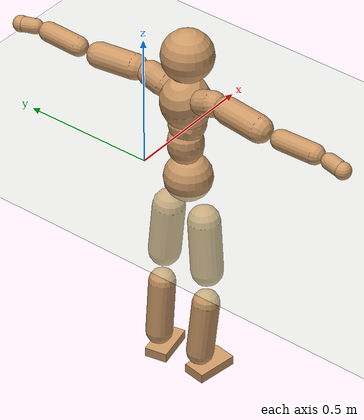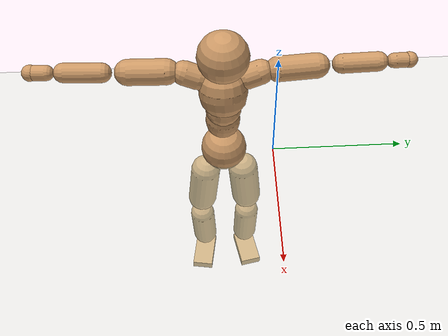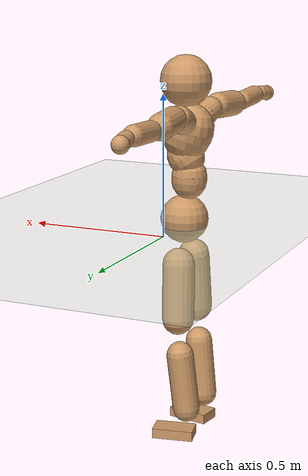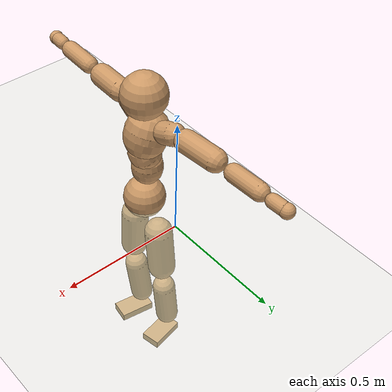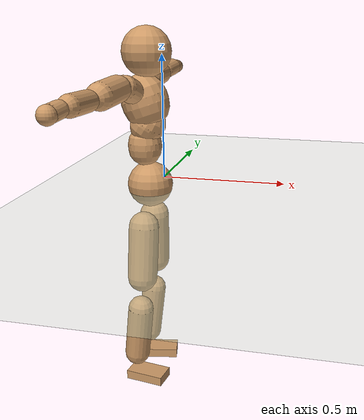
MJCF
<mujoco model="humanoid">
  <compiler coordinate="local"/>
  <default>
    <joint damping="0.0" armature="0.01" stiffness="0.0" limited="true"/>
    <geom conaffinity="1" condim="3" contype="7" margin="0.001" rgba="0.8 0.6 .4 1"/>
  </default>
  <asset>
    <texture type="skybox" builtin="gradient" rgb1=".4 .5 .6" rgb2="0 0 0" width="100" height="100"/>
    <texture builtin="flat" height="1278" mark="cross" markrgb="1 1 1" name="texgeom" random="0.01" rgb1="0.8 0.6 0.4" rgb2="0.8 0.6 0.4" type="cube" width="127"/>
    <texture builtin="checker" height="100" name="texplane" rgb1="0 0 0" rgb2="0.8 0.8 0.8" type="2d" width="100"/>
    <material name="MatPlane" reflectance="0.5" shininess="1" specular="1" texrepeat="60 60" texture="texplane"/>
    <material name="geom" texture="texgeom" texuniform="true"/>
  </asset>
  <worldbody>
    <light cutoff="100" diffuse="1 1 1" dir="-0 0 -1.3" directional="true" exponent="1" pos="0 0 1.3" specular=".1 .1 .1"/>
    <geom conaffinity="1" condim="3" name="floor" pos="0 0 0" rgba="0.8 0.9 0.8 1" size="100 100 .2" type="plane" material="MatPlane"/>
    <body name="Pelvis" pos="0.0003 -0.1916 0.0254">
      <freejoint name="Pelvis"/>
      <geom type="sphere" contype="1" conaffinity="1" density="500" size="0.0873" pos="0.0000 0.0000 0.0000" name="Pelvis"/>
      <body name="L_Hip" pos="-0.0088 0.0705 -0.084">
        <joint name="L_Hip_x" type="hinge" pos="0 0 0" axis="1 0 0" stiffness="800" damping="80" armature="0.02" range="-180.0000 180.0000"/>
        <joint name="L_Hip_y" type="hinge" pos="0 0 0" axis="0 1 0" stiffness="800" damping="80" armature="0.02" range="-180.0000 180.0000"/>
        <joint name="L_Hip_z" type="hinge" pos="0 0 0" axis="0 0 1" stiffness="800" damping="80" armature="0.02" range="-180.0000 180.0000"/>
        <geom type="capsule" contype="1" conaffinity="1" density="500" fromto="-0.0018 0.0051 -0.0673 -0.0071 0.0205 -0.2692" size="0.0583" name="L_Hip"/>
        <body name="L_Knee" pos="-0.0089 0.0257 -0.3366">
          <joint name="L_Knee_x" type="hinge" pos="0 0 0" axis="1 0 0" stiffness="800" damping="80" armature="0.02" range="-180.0000 180.0000"/>
          <joint name="L_Knee_y" type="hinge" pos="0 0 0" axis="0 1 0" stiffness="800" damping="80" armature="0.02" range="-180.0000 180.0000"/>
          <joint name="L_Knee_z" type="hinge" pos="0 0 0" axis="0 0 1" stiffness="800" damping="80" armature="0.02" range="-180.0000 180.0000"/>
          <geom type="capsule" contype="1" conaffinity="1" density="500" fromto="-0.0081 -0.0018 -0.0694 -0.0324 -0.0071 -0.2775" size="0.0492" name="L_Knee"/>
          <body name="L_Ankle" pos="-0.0405 -0.0089 -0.3469">
            <joint name="L_Ankle_x" type="hinge" pos="0 0 0" axis="1 0 0" stiffness="800" damping="80" armature="0.02" range="-180.0000 180.0000"/>
            <joint name="L_Ankle_y" type="hinge" pos="0 0 0" axis="0 1 0" stiffness="800" damping="80" armature="0.02" range="-180.0000 180.0000"/>
            <joint name="L_Ankle_z" type="hinge" pos="0 0 0" axis="0 0 1" stiffness="800" damping="80" armature="0.02" range="-180.0000 180.0000"/>
            <geom type="box" contype="1" conaffinity="1" density="500" pos="0.0523 0.0105 -0.0253" size="0.0752 0.0422 0.0183" quat="0.9951 0.0000 0.0000 0.0990" name="L_Ankle"/>
            <body name="L_Toe" pos="0.1046 0.021 -0.0505">
              <joint name="L_Toe_x" type="hinge" pos="0 0 0" axis="1 0 0" stiffness="500" damping="50" armature="0.02" range="-180.0000 180.0000"/>
              <joint name="L_Toe_y" type="hinge" pos="0 0 0" axis="0 1 0" stiffness="500" damping="50" armature="0.02" range="-180.0000 180.0000"/>
              <joint name="L_Toe_z" type="hinge" pos="0 0 0" axis="0 0 1" stiffness="500" damping="50" armature="0.02" range="-180.0000 180.0000"/>
              <geom type="box" contype="1" conaffinity="1" density="500" pos="0.0000 0.0000 0.0250" size="0.0009 0.0021 0.0009" quat="0.9944 0.0000 0.0000 0.1061" name="L_Toe"/>
            </body>
          </body>
        </body>
      </body>
      <body name="R_Hip" pos="-0.0053 -0.0678 -0.0839">
        <joint name="R_Hip_x" type="hinge" pos="0 0 0" axis="1 0 0" stiffness="800" damping="80" armature="0.02" range="-180.0000 180.0000"/>
        <joint name="R_Hip_y" type="hinge" pos="0 0 0" axis="0 1 0" stiffness="800" damping="80" armature="0.02" range="-180.0000 180.0000"/>
        <joint name="R_Hip_z" type="hinge" pos="0 0 0" axis="0 0 1" stiffness="800" damping="80" armature="0.02" range="-180.0000 180.0000"/>
        <geom type="capsule" contype="1" conaffinity="1" density="500" fromto="-0.0019 -0.0064 -0.0681 -0.0075 -0.0255 -0.2723" size="0.0578" name="R_Hip"/>
        <body name="R_Knee" pos="-0.0094 -0.0318 -0.3403">
          <joint name="R_Knee_x" type="hinge" pos="0 0 0" axis="1 0 0" stiffness="800" damping="80" armature="0.02" range="-180.0000 180.0000"/>
          <joint name="R_Knee_y" type="hinge" pos="0 0 0" axis="0 1 0" stiffness="800" damping="80" armature="0.02" range="-180.0000 180.0000"/>
          <joint name="R_Knee_z" type="hinge" pos="0 0 0" axis="0 0 1" stiffness="800" damping="80" armature="0.02" range="-180.0000 180.0000"/>
          <geom type="capsule" contype="1" conaffinity="1" density="500" fromto="-0.0077 0.0023 -0.0694 -0.0310 0.0092 -0.2775" size="0.0498" name="R_Knee"/>
          <body name="R_Ankle" pos="-0.0387 0.0115 -0.3469">
            <joint name="R_Ankle_x" type="hinge" pos="0 0 0" axis="1 0 0" stiffness="800" damping="80" armature="0.02" range="-180.0000 180.0000"/>
            <joint name="R_Ankle_y" type="hinge" pos="0 0 0" axis="0 1 0" stiffness="800" damping="80" armature="0.02" range="-180.0000 180.0000"/>
            <joint name="R_Ankle_z" type="hinge" pos="0 0 0" axis="0 0 1" stiffness="800" damping="80" armature="0.02" range="-180.0000 180.0000"/>
            <geom type="box" contype="1" conaffinity="1" density="500" pos="0.0539 -0.0085 -0.0214" size="0.0765 0.0425 0.0181" quat="0.9969 0.0000 0.0000 -0.0781" name="R_Ankle"/>
            <body name="R_Toe" pos="0.1078 -0.017 -0.0428">
              <joint name="R_Toe_x" type="hinge" pos="0 0 0" axis="1 0 0" stiffness="500" damping="50" armature="0.02" range="-180.0000 180.0000"/>
              <joint name="R_Toe_y" type="hinge" pos="0 0 0" axis="0 1 0" stiffness="500" damping="50" armature="0.02" range="-180.0000 180.0000"/>
              <joint name="R_Toe_z" type="hinge" pos="0 0 0" axis="0 0 1" stiffness="500" damping="50" armature="0.02" range="-180.0000 180.0000"/>
              <geom type="box" contype="1" conaffinity="1" density="500" pos="0.0000 0.0000 0.0241" size="0.0008 0.0021 0.001" quat="0.9977 0.0000 0.0000 -0.0678" name="R_Toe"/>
            </body>
          </body>
        </body>
      </body>
      <body name="Torso" pos="-0.0159 -0.0022 0.0933">
        <joint name="Torso_x" type="hinge" pos="0 0 0" axis="1 0 0" stiffness="1000" damping="100" armature="0.02" range="-180.0000 180.0000"/>
        <joint name="Torso_y" type="hinge" pos="0 0 0" axis="0 1 0" stiffness="1000" damping="100" armature="0.02" range="-180.0000 180.0000"/>
        <joint name="Torso_z" type="hinge" pos="0 0 0" axis="0 0 1" stiffness="1000" damping="100" armature="0.02" range="-180.0000 180.0000"/>
        <geom type="capsule" contype="1" conaffinity="1" density="500" fromto="-0.0012 0.0010 0.0680 -0.0008 0.0006 0.0453" size="0.0638" name="Torso"/>
        <body name="Spine" pos="-0.0021 0.0016 0.1133">
          <joint name="Spine_x" type="hinge" pos="0 0 0" axis="1 0 0" stiffness="1000" damping="100" armature="0.02" range="-180.0000 180.0000"/>
          <joint name="Spine_y" type="hinge" pos="0 0 0" axis="0 1 0" stiffness="1000" damping="100" armature="0.02" range="-180.0000 180.0000"/>
          <joint name="Spine_z" type="hinge" pos="0 0 0" axis="0 0 1" stiffness="1000" damping="100" armature="0.02" range="-180.0000 180.0000"/>
          <geom type="capsule" contype="1" conaffinity="1" density="500" fromto="0.0169 0.0014 0.0259 0.0113 0.0010 0.0173" size="0.0658" name="Spine"/>
          <body name="Chest" pos="0.0282 0.0024 0.0432">
            <joint name="Chest_x" type="hinge" pos="0 0 0" axis="1 0 0" stiffness="1000" damping="100" armature="0.02" range="-180.0000 180.0000"/>
            <joint name="Chest_y" type="hinge" pos="0 0 0" axis="0 1 0" stiffness="1000" damping="100" armature="0.02" range="-180.0000 180.0000"/>
            <joint name="Chest_z" type="hinge" pos="0 0 0" axis="0 0 1" stiffness="1000" damping="100" armature="0.02" range="-180.0000 180.0000"/>
            <geom type="capsule" contype="1" conaffinity="1" density="500" fromto="-0.0279 -0.0004 0.0826 -0.0186 -0.0003 0.0551" size="0.0887" name="Chest"/>
            <body name="Neck" pos="-0.0579 -0.001 0.1936">
              <joint name="Neck_x" type="hinge" pos="0 0 0" axis="1 0 0" stiffness="500" damping="50" armature="0.02" range="-180.0000 180.0000"/>
              <joint name="Neck_y" type="hinge" pos="0 0 0" axis="0 1 0" stiffness="500" damping="50" armature="0.02" range="-180.0000 180.0000"/>
              <joint name="Neck_z" type="hinge" pos="0 0 0" axis="0 0 1" stiffness="500" damping="50" armature="0.02" range="-180.0000 180.0000"/>
              <geom type="capsule" contype="1" conaffinity="1" density="500" fromto="0.0089 0.0004 0.0110 0.0357 0.0015 0.0441" size="0.0375" name="Neck"/>
              <body name="Head" pos="0.0446 0.0018 0.0552">
                <joint name="Head_x" type="hinge" pos="0 0 0" axis="1 0 0" stiffness="500" damping="50" armature="0.02" range="-180.0000 180.0000"/>
                <joint name="Head_y" type="hinge" pos="0 0 0" axis="0 1 0" stiffness="500" damping="50" armature="0.02" range="-180.0000 180.0000"/>
                <joint name="Head_z" type="hinge" pos="0 0 0" axis="0 0 1" stiffness="500" damping="50" armature="0.02" range="-180.0000 180.0000"/>
                <geom type="sphere" contype="1" conaffinity="1" density="500" size="0.0927" pos="0.0000 0.0000 0.0000" name="Head"/>
              </body>
            </body>
            <body name="L_Thorax" pos="-0.0384 0.0704 0.1103">
              <joint name="L_Thorax_x" type="hinge" pos="0 0 0" axis="1 0 0" stiffness="500" damping="50" armature="0.02" range="-180.0000 180.0000"/>
              <joint name="L_Thorax_y" type="hinge" pos="0 0 0" axis="0 1 0" stiffness="500" damping="50" armature="0.02" range="-180.0000 180.0000"/>
              <joint name="L_Thorax_z" type="hinge" pos="0 0 0" axis="0 0 1" stiffness="500" damping="50" armature="0.02" range="-180.0000 180.0000"/>
              <geom type="capsule" contype="1" conaffinity="1" density="500" fromto="-0.0011 0.0158 0.0062 -0.0044 0.0632 0.0248" size="0.0455" name="L_Thorax"/>
              <body name="L_Shoulder" pos="-0.0056 0.0789 0.031">
                <joint name="L_Shoulder_x" type="hinge" pos="0 0 0" axis="1 0 0" stiffness="500" damping="50" armature="0.02" range="-720.0000 720.0000"/>
                <joint name="L_Shoulder_y" type="hinge" pos="0 0 0" axis="0 1 0" stiffness="500" damping="50" armature="0.02" range="-720.0000 720.0000"/>
                <joint name="L_Shoulder_z" type="hinge" pos="0 0 0" axis="0 0 1" stiffness="500" damping="50" armature="0.02" range="-720.0000 720.0000"/>
                <geom type="capsule" contype="1" conaffinity="1" density="500" fromto="-0.0049 0.0463 -0.0016 -0.0194 0.1852 -0.0064" size="0.0461" name="L_Shoulder"/>
                <body name="L_Elbow" pos="-0.0243 0.2315 -0.008">
                  <joint name="L_Elbow_x" type="hinge" pos="0 0 0" axis="1 0 0" stiffness="500" damping="50" armature="0.02" range="-720.0000 720.0000"/>
                  <joint name="L_Elbow_y" type="hinge" pos="0 0 0" axis="0 1 0" stiffness="500" damping="50" armature="0.02" range="-720.0000 720.0000"/>
                  <joint name="L_Elbow_z" type="hinge" pos="0 0 0" axis="0 0 1" stiffness="500" damping="50" armature="0.02" range="-720.0000 720.0000"/>
                  <geom type="capsule" contype="1" conaffinity="1" density="500" fromto="0.0000 0.0430 0.0015 0.0001 0.1721 0.0060" size="0.0356" name="L_Elbow"/>
                  <body name="L_Wrist" pos="0.0001 0.2151 0.0075">
                    <joint name="L_Wrist_x" type="hinge" pos="0 0 0" axis="1 0 0" stiffness="300" damping="30" armature="0.02" range="-180.0000 180.0000"/>
                    <joint name="L_Wrist_y" type="hinge" pos="0 0 0" axis="0 1 0" stiffness="300" damping="30" armature="0.02" range="-180.0000 180.0000"/>
                    <joint name="L_Wrist_z" type="hinge" pos="0 0 0" axis="0 0 1" stiffness="300" damping="30" armature="0.02" range="-180.0000 180.0000"/>
                    <geom type="capsule" contype="1" conaffinity="1" density="500" fromto="-0.0022 0.0145 -0.0021 -0.0089 0.0579 -0.0083" size="0.0274" name="L_Wrist"/>
                    <body name="L_Hand" pos="-0.0112 0.0724 -0.0104">
                      <joint name="L_Hand_x" type="hinge" pos="0 0 0" axis="1 0 0" stiffness="300" damping="30" armature="0.02" range="-180.0000 180.0000"/>
                      <joint name="L_Hand_y" type="hinge" pos="0 0 0" axis="0 1 0" stiffness="300" damping="30" armature="0.02" range="-180.0000 180.0000"/>
                      <joint name="L_Hand_z" type="hinge" pos="0 0 0" axis="0 0 1" stiffness="300" damping="30" armature="0.02" range="-180.0000 180.0000"/>
                      <geom type="sphere" contype="1" conaffinity="1" density="500" size="0.0295" pos="0.0000 0.0000 0.0000" name="L_Hand"/>
                    </body>
                  </body>
                </body>
              </body>
            </body>
            <body name="R_Thorax" pos="-0.043 -0.0716 0.1091">
              <joint name="R_Thorax_x" type="hinge" pos="0 0 0" axis="1 0 0" stiffness="500" damping="50" armature="0.02" range="-180.0000 180.0000"/>
              <joint name="R_Thorax_y" type="hinge" pos="0 0 0" axis="0 1 0" stiffness="500" damping="50" armature="0.02" range="-180.0000 180.0000"/>
              <joint name="R_Thorax_z" type="hinge" pos="0 0 0" axis="0 0 1" stiffness="500" damping="50" armature="0.02" range="-180.0000 180.0000"/>
              <geom type="capsule" contype="1" conaffinity="1" density="500" fromto="-0.0020 -0.0164 0.0064 -0.0080 -0.0655 0.0256" size="0.0448" name="R_Thorax"/>
              <body name="R_Shoulder" pos="-0.01 -0.0818 0.032">
                <joint name="R_Shoulder_x" type="hinge" pos="0 0 0" axis="1 0 0" stiffness="500" damping="50" armature="0.02" range="-720.0000 720.0000"/>
                <joint name="R_Shoulder_y" type="hinge" pos="0 0 0" axis="0 1 0" stiffness="500" damping="50" armature="0.02" range="-720.0000 720.0000"/>
                <joint name="R_Shoulder_z" type="hinge" pos="0 0 0" axis="0 0 1" stiffness="500" damping="50" armature="0.02" range="-720.0000 720.0000"/>
                <geom type="capsule" contype="1" conaffinity="1" density="500" fromto="-0.0032 -0.0455 -0.0023 -0.0128 -0.1819 -0.0092" size="0.0477" name="R_Shoulder"/>
                <body name="R_Elbow" pos="-0.0159 -0.2274 -0.0115">
                  <joint name="R_Elbow_x" type="hinge" pos="0 0 0" axis="1 0 0" stiffness="500" damping="50" armature="0.02" range="-720.0000 720.0000"/>
                  <joint name="R_Elbow_y" type="hinge" pos="0 0 0" axis="0 1 0" stiffness="500" damping="50" armature="0.02" range="-720.0000 720.0000"/>
                  <joint name="R_Elbow_z" type="hinge" pos="0 0 0" axis="0 0 1" stiffness="500" damping="50" armature="0.02" range="-720.0000 720.0000"/>
                  <geom type="capsule" contype="1" conaffinity="1" density="500" fromto="-0.0003 -0.0449 0.0018 -0.0014 -0.1795 0.0073" size="0.0357" name="R_Elbow"/>
                  <body name="R_Wrist" pos="-0.0017 -0.2244 0.0092">
                    <joint name="R_Wrist_x" type="hinge" pos="0 0 0" axis="1 0 0" stiffness="300" damping="30" armature="0.02" range="-180.0000 180.0000"/>
                    <joint name="R_Wrist_y" type="hinge" pos="0 0 0" axis="0 1 0" stiffness="300" damping="30" armature="0.02" range="-180.0000 180.0000"/>
                    <joint name="R_Wrist_z" type="hinge" pos="0 0 0" axis="0 0 1" stiffness="300" damping="30" armature="0.02" range="-180.0000 180.0000"/>
                    <geom type="capsule" contype="1" conaffinity="1" density="500" fromto="-0.0020 -0.0148 -0.0016 -0.0080 -0.0591 -0.0062" size="0.0283" name="R_Wrist"/>
                    <body name="R_Hand" pos="-0.01 -0.0738 -0.0078">
                      <joint name="R_Hand_x" type="hinge" pos="0 0 0" axis="1 0 0" stiffness="300" damping="30" armature="0.02" range="-180.0000 180.0000"/>
                      <joint name="R_Hand_y" type="hinge" pos="0 0 0" axis="0 1 0" stiffness="300" damping="30" armature="0.02" range="-180.0000 180.0000"/>
                      <joint name="R_Hand_z" type="hinge" pos="0 0 0" axis="0 0 1" stiffness="300" damping="30" armature="0.02" range="-180.0000 180.0000"/>
                      <geom type="sphere" contype="1" conaffinity="1" density="500" size="0.0298" pos="0.0000 0.0000 0.0000" name="R_Hand"/>
                    </body>
                  </body>
                </body>
              </body>
            </body>
          </body>
        </body>
      </body>
    </body>
  </worldbody>
  <actuator>
    <motor name="L_Hip_x" joint="L_Hip_x" gear="500"/>
    <motor name="L_Hip_y" joint="L_Hip_y" gear="500"/>
    <motor name="L_Hip_z" joint="L_Hip_z" gear="500"/>
    <motor name="L_Knee_x" joint="L_Knee_x" gear="500"/>
    <motor name="L_Knee_y" joint="L_Knee_y" gear="500"/>
    <motor name="L_Knee_z" joint="L_Knee_z" gear="500"/>
    <motor name="L_Ankle_x" joint="L_Ankle_x" gear="500"/>
    <motor name="L_Ankle_y" joint="L_Ankle_y" gear="500"/>
    <motor name="L_Ankle_z" joint="L_Ankle_z" gear="500"/>
    <motor name="L_Toe_x" joint="L_Toe_x" gear="500"/>
    <motor name="L_Toe_y" joint="L_Toe_y" gear="500"/>
    <motor name="L_Toe_z" joint="L_Toe_z" gear="500"/>
    <motor name="R_Hip_x" joint="R_Hip_x" gear="500"/>
    <motor name="R_Hip_y" joint="R_Hip_y" gear="500"/>
    <motor name="R_Hip_z" joint="R_Hip_z" gear="500"/>
    <motor name="R_Knee_x" joint="R_Knee_x" gear="500"/>
    <motor name="R_Knee_y" joint="R_Knee_y" gear="500"/>
    <motor name="R_Knee_z" joint="R_Knee_z" gear="500"/>
    <motor name="R_Ankle_x" joint="R_Ankle_x" gear="500"/>
    <motor name="R_Ankle_y" joint="R_Ankle_y" gear="500"/>
    <motor name="R_Ankle_z" joint="R_Ankle_z" gear="500"/>
    <motor name="R_Toe_x" joint="R_Toe_x" gear="500"/>
    <motor name="R_Toe_y" joint="R_Toe_y" gear="500"/>
    <motor name="R_Toe_z" joint="R_Toe_z" gear="500"/>
    <motor name="Torso_x" joint="Torso_x" gear="500"/>
    <motor name="Torso_y" joint="Torso_y" gear="500"/>
    <motor name="Torso_z" joint="Torso_z" gear="500"/>
    <motor name="Spine_x" joint="Spine_x" gear="500"/>
    <motor name="Spine_y" joint="Spine_y" gear="500"/>
    <motor name="Spine_z" joint="Spine_z" gear="500"/>
    <motor name="Chest_x" joint="Chest_x" gear="500"/>
    <motor name="Chest_y" joint="Chest_y" gear="500"/>
    <motor name="Chest_z" joint="Chest_z" gear="500"/>
    <motor name="Neck_x" joint="Neck_x" gear="500"/>
    <motor name="Neck_y" joint="Neck_y" gear="500"/>
    <motor name="Neck_z" joint="Neck_z" gear="500"/>
    <motor name="Head_x" joint="Head_x" gear="500"/>
    <motor name="Head_y" joint="Head_y" gear="500"/>
    <motor name="Head_z" joint="Head_z" gear="500"/>
    <motor name="L_Thorax_x" joint="L_Thorax_x" gear="500"/>
    <motor name="L_Thorax_y" joint="L_Thorax_y" gear="500"/>
    <motor name="L_Thorax_z" joint="L_Thorax_z" gear="500"/>
    <motor name="L_Shoulder_x" joint="L_Shoulder_x" gear="500"/>
    <motor name="L_Shoulder_y" joint="L_Shoulder_y" gear="500"/>
    <motor name="L_Shoulder_z" joint="L_Shoulder_z" gear="500"/>
    <motor name="L_Elbow_x" joint="L_Elbow_x" gear="500"/>
    <motor name="L_Elbow_y" joint="L_Elbow_y" gear="500"/>
    <motor name="L_Elbow_z" joint="L_Elbow_z" gear="500"/>
    <motor name="L_Wrist_x" joint="L_Wrist_x" gear="500"/>
    <motor name="L_Wrist_y" joint="L_Wrist_y" gear="500"/>
    <motor name="L_Wrist_z" joint="L_Wrist_z" gear="500"/>
    <motor name="L_Hand_x" joint="L_Hand_x" gear="500"/>
    <motor name="L_Hand_y" joint="L_Hand_y" gear="500"/>
    <motor name="L_Hand_z" joint="L_Hand_z" gear="500"/>
    <motor name="R_Thorax_x" joint="R_Thorax_x" gear="500"/>
    <motor name="R_Thorax_y" joint="R_Thorax_y" gear="500"/>
    <motor name="R_Thorax_z" joint="R_Thorax_z" gear="500"/>
    <motor name="R_Shoulder_x" joint="R_Shoulder_x" gear="500"/>
    <motor name="R_Shoulder_y" joint="R_Shoulder_y" gear="500"/>
    <motor name="R_Shoulder_z" joint="R_Shoulder_z" gear="500"/>
    <motor name="R_Elbow_x" joint="R_Elbow_x" gear="500"/>
    <motor name="R_Elbow_y" joint="R_Elbow_y" gear="500"/>
    <motor name="R_Elbow_z" joint="R_Elbow_z" gear="500"/>
    <motor name="R_Wrist_x" joint="R_Wrist_x" gear="500"/>
    <motor name="R_Wrist_y" joint="R_Wrist_y" gear="500"/>
    <motor name="R_Wrist_z" joint="R_Wrist_z" gear="500"/>
    <motor name="R_Hand_x" joint="R_Hand_x" gear="500"/>
    <motor name="R_Hand_y" joint="R_Hand_y" gear="500"/>
    <motor name="R_Hand_z" joint="R_Hand_z" gear="500"/>
  </actuator>
  <contact>
    <exclude body1="Torso" body2="Chest"/>
    <exclude body1="Head" body2="Chest"/>
    <exclude body1="R_Knee" body2="R_Toe"/>
    <exclude body1="R_Knee" body2="L_Ankle"/>
    <exclude body1="R_Knee" body2="L_Toe"/>
    <exclude body1="L_Knee" body2="L_Toe"/>
    <exclude body1="L_Knee" body2="R_Ankle"/>
    <exclude body1="L_Knee" body2="R_Toe"/>
    <exclude body1="L_Shoulder" body2="Chest"/>
    <exclude body1="R_Shoulder" body2="Chest"/>
  </contact>
  <sensor/>
  <size njmax="700" nconmax="700"/>
</mujoco>
